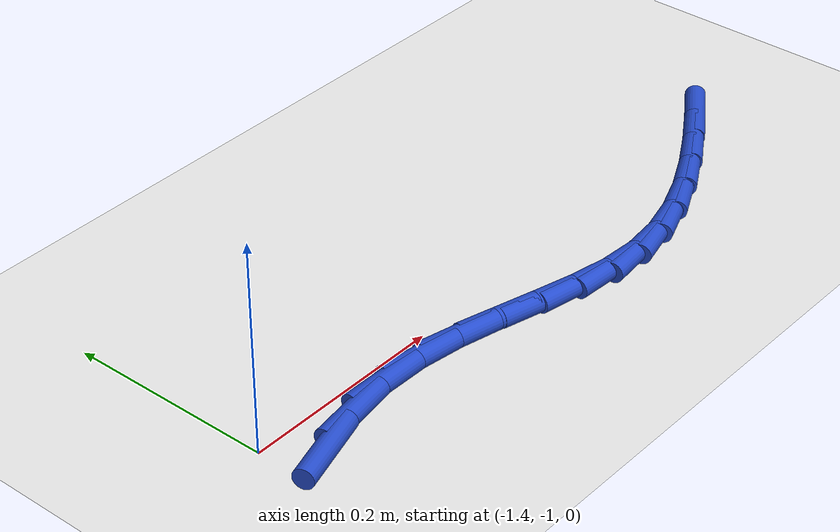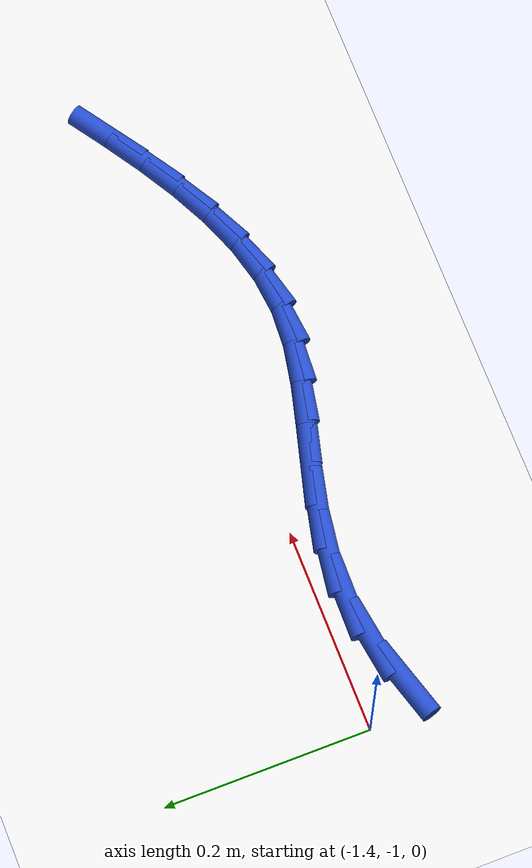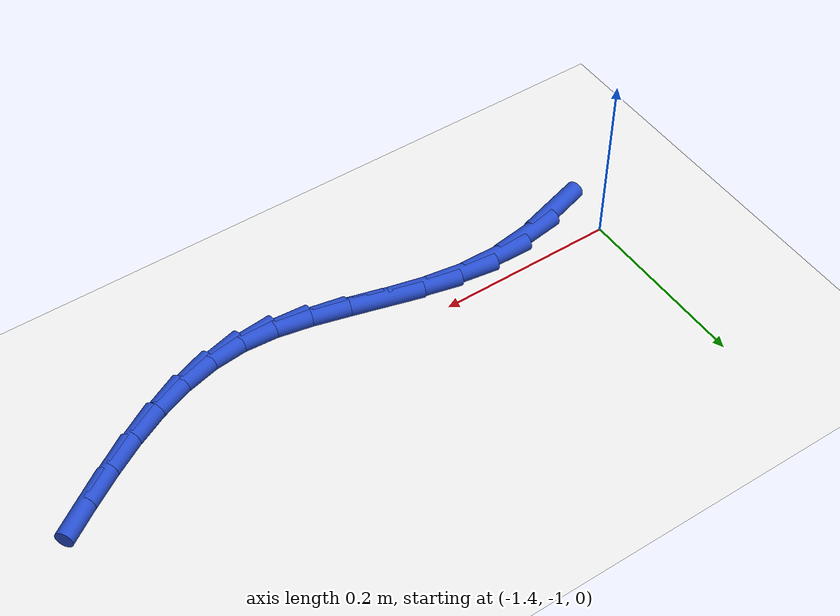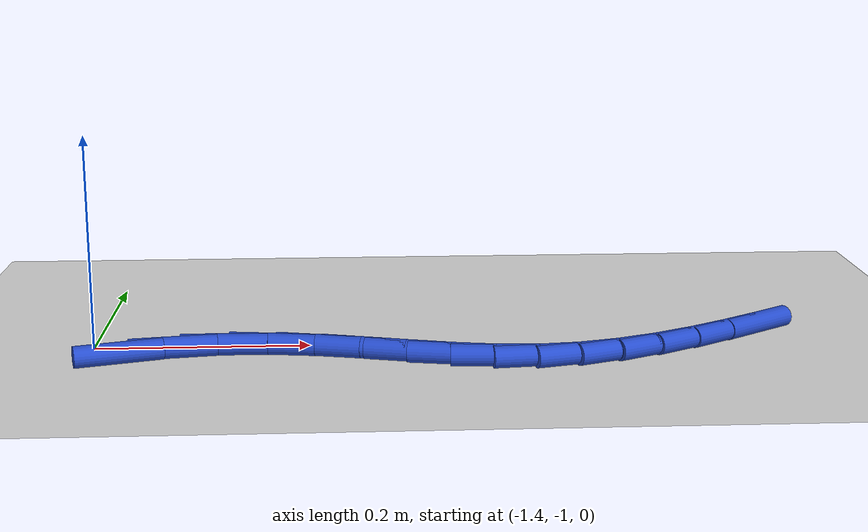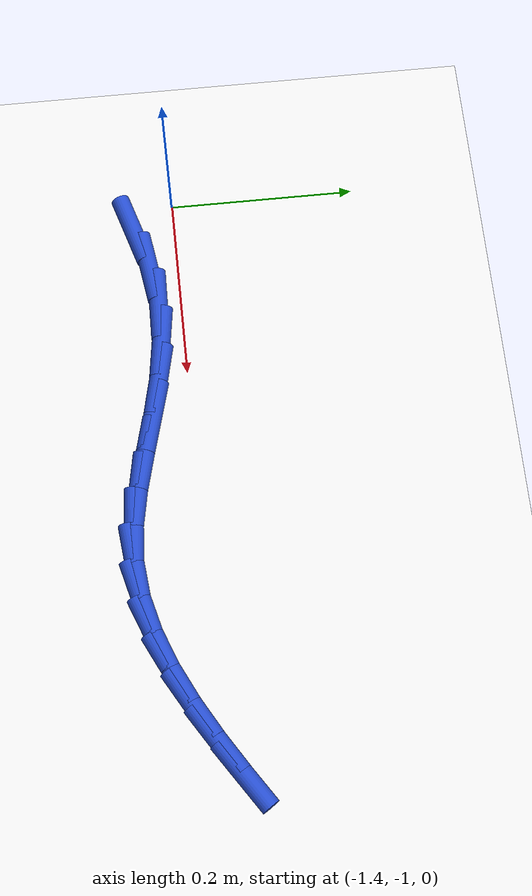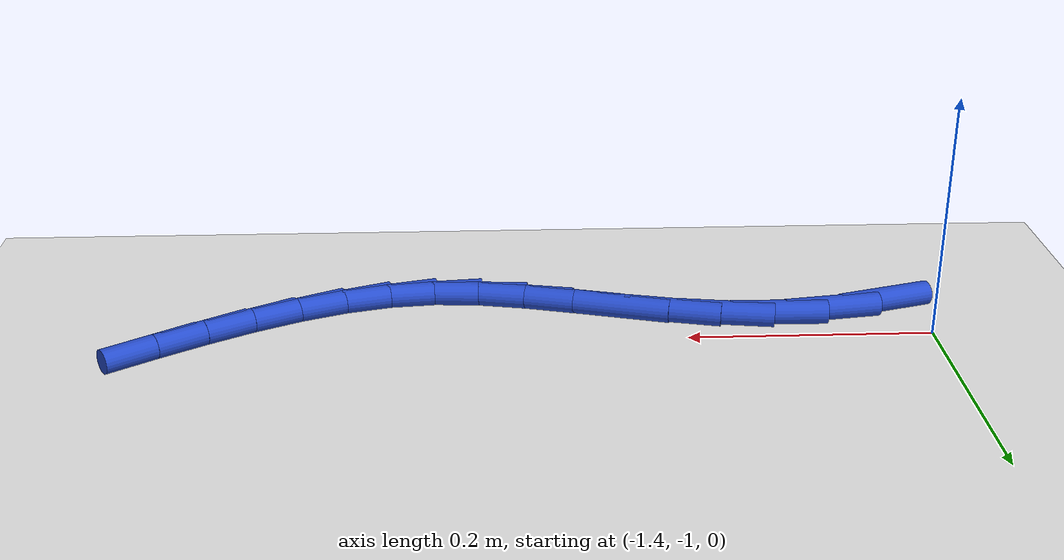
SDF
<sdf version="1.6">
 <world name="default">
  <model name="ground_plane">
   <static>1</static>
   <link name="link">
    <collision name="collision">
     <geometry><plane><normal>0 0 1</normal><size>100 100</size></plane></geometry>
     <surface><friction><ode><mu>100</mu><mu2>50</mu2></ode></friction></surface>
    </collision>
    <visual name="visual">
     <cast_shadows>0</cast_shadows>
     <geometry><plane><normal>0 0 1</normal><size>100 100</size></plane></geometry>
     <material>
      <script><uri>file://media/materials/scripts/gazebo.material</uri><name>Gazebo/WhiteGlow</name></script>
     </material>
    </visual>
   </link>
  </model>
  <model name="line">
   <link name="link_143">
    <pose>-1.3703644212054427 -1.0448659117254724 0.01 0 1.57 0.28922871550356277</pose>
    <collision name="collision">
     <geometry><cylinder><radius>0.01</radius><length>0.08</length></cylinder></geometry>
    </collision>
    <visual name="visual">
     <material>
      <script><name>Gazebo/Blue</name><uri>file://media/materials/scripts/gazebo.material</uri></script>
     </material>
     <geometry><cylinder><radius>0.01</radius><length>0.08</length></cylinder></geometry>
    </visual>
   </link>
   <link name="link_144">
    <pose>-1.323293132770865 -1.0308587666398346 0.01 0 1.57 0.14564522717316772</pose>
    <collision name="collision">
     <geometry><cylinder><radius>0.01</radius><length>0.08</length></cylinder></geometry>
    </collision>
    <visual name="visual">
     <material>
      <script><name>Gazebo/Blue</name><uri>file://media/materials/scripts/gazebo.material</uri></script>
     </material>
     <geometry><cylinder><radius>0.01</radius><length>0.08</length></cylinder></geometry>
    </visual>
   </link>
   <link name="link_145">
    <pose>-1.277574207769142 -1.0241525375277136 0.01 0 1.57 -0.015631701631875865</pose>
    <collision name="collision">
     <geometry><cylinder><radius>0.01</radius><length>0.08</length></cylinder></geometry>
    </collision>
    <visual name="visual">
     <material>
      <script><name>Gazebo/Blue</name><uri>file://media/materials/scripts/gazebo.material</uri></script>
     </material>
     <geometry><cylinder><radius>0.01</radius><length>0.08</length></cylinder></geometry>
    </visual>
   </link>
   <link name="link_146">
    <pose>-1.2335488616845065 -1.024840784660613 0.01 0 1.57 -0.14386185768333418</pose>
    <collision name="collision">
     <geometry><cylinder><radius>0.01</radius><length>0.08</length></cylinder></geometry>
    </collision>
    <visual name="visual">
     <material>
      <script><name>Gazebo/Blue</name><uri>file://media/materials/scripts/gazebo.material</uri></script>
     </material>
     <geometry><cylinder><radius>0.01</radius><length>0.08</length></cylinder></geometry>
    </visual>
   </link>
   <link name="link_147">
    <pose>-1.1910573415722605 -1.0309962171433877 0.01 0 1.57 -0.22798273838812863</pose>
    <collision name="collision">
     <geometry><cylinder><radius>0.01</radius><length>0.08</length></cylinder></geometry>
    </collision>
    <visual name="visual">
     <material>
      <script><name>Gazebo/Blue</name><uri>file://media/materials/scripts/gazebo.material</uri></script>
     </material>
     <geometry><cylinder><radius>0.01</radius><length>0.08</length></cylinder></geometry>
    </visual>
   </link>
   <link name="link_148">
    <pose>-1.149903466029436 -1.0405445957142077 0.01 0 1.57 -0.2651958662432456</pose>
    <collision name="collision">
     <geometry><cylinder><radius>0.01</radius><length>0.08</length></cylinder></geometry>
    </collision>
    <visual name="visual">
     <material>
      <script><name>Gazebo/Blue</name><uri>file://media/materials/scripts/gazebo.material</uri></script>
     </material>
     <geometry><cylinder><radius>0.01</radius><length>0.08</length></cylinder></geometry>
    </visual>
   </link>
   <link name="link_149">
    <pose>-1.1098910536530657 -1.051411681111242 0.01 0 1.57 -0.25326721359316695</pose>
    <collision name="collision">
     <geometry><cylinder><radius>0.01</radius><length>0.08</length></cylinder></geometry>
    </collision>
    <visual name="visual">
     <material>
      <script><name>Gazebo/Blue</name><uri>file://media/materials/scripts/gazebo.material</uri></script>
     </material>
     <geometry><cylinder><radius>0.01</radius><length>0.08</length></cylinder></geometry>
    </visual>
   </link>
   <link name="link_150">
    <pose>-1.0708239230401806 -1.0615232340726592 0.01 0 1.57 -0.18779608914487553</pose>
    <collision name="collision">
     <geometry><cylinder><radius>0.01</radius><length>0.08</length></cylinder></geometry>
    </collision>
    <visual name="visual">
     <material>
      <script><name>Gazebo/Blue</name><uri>file://media/materials/scripts/gazebo.material</uri></script>
     </material>
     <geometry><cylinder><radius>0.01</radius><length>0.08</length></cylinder></geometry>
    </visual>
   </link>
   <link name="link_151">
    <pose>-1.032505892787814 -1.0688050153366306 0.01 0 1.57 -0.0629351795954367</pose>
    <collision name="collision">
     <geometry><cylinder><radius>0.01</radius><length>0.08</length></cylinder></geometry>
    </collision>
    <visual name="visual">
     <material>
      <script><name>Gazebo/Blue</name><uri>file://media/materials/scripts/gazebo.material</uri></script>
     </material>
     <geometry><cylinder><radius>0.01</radius><length>0.08</length></cylinder></geometry>
    </visual>
   </link>
   <link name="link_152">
    <pose>-0.9947408682583905 -1.0711849068885282 0.01 0 1.57 0.10219651301565552</pose>
    <collision name="collision">
     <geometry><cylinder><radius>0.01</radius><length>0.08</length></cylinder></geometry>
    </collision>
    <visual name="visual">
     <material>
      <script><name>Gazebo/Blue</name><uri>file://media/materials/scripts/gazebo.material</uri></script>
     </material>
     <geometry><cylinder><radius>0.01</radius><length>0.08</length></cylinder></geometry>
    </visual>
   </link>
   <link name="link_153">
    <pose>-0.9573638805489332 -1.0673517551352096 0.01 0 1.57 0.2501415875043875</pose>
    <collision name="collision">
     <geometry><cylinder><radius>0.01</radius><length>0.08</length></cylinder></geometry>
    </collision>
    <visual name="visual">
     <material>
      <script><name>Gazebo/Blue</name><uri>file://media/materials/scripts/gazebo.material</uri></script>
     </material>
     <geometry><cylinder><radius>0.01</radius><length>0.08</length></cylinder></geometry>
    </visual>
   </link>
   <link name="link_154">
    <pose>-0.9202870418773631 -1.0578788918243507 0.01 0 1.57 0.36902563526352805</pose>
    <collision name="collision">
     <geometry><cylinder><radius>0.01</radius><length>0.08</length></cylinder></geometry>
    </collision>
    <visual name="visual">
     <material>
      <script><name>Gazebo/Blue</name><uri>file://media/materials/scripts/gazebo.material</uri></script>
     </material>
     <geometry><cylinder><radius>0.01</radius><length>0.08</length></cylinder></geometry>
    </visual>
   </link>
   <link name="link_155">
    <pose>-0.8834341902930539 -1.0436263227584879 0.01 0 1.57 0.4597114066670343</pose>
    <collision name="collision">
     <geometry><cylinder><radius>0.01</radius><length>0.08</length></cylinder></geometry>
    </collision>
    <visual name="visual">
     <material>
      <script><name>Gazebo/Blue</name><uri>file://media/materials/scripts/gazebo.material</uri></script>
     </material>
     <geometry><cylinder><radius>0.01</radius><length>0.08</length></cylinder></geometry>
    </visual>
   </link>
   <link name="link_156">
    <pose>-0.8467291638453787 -1.0254540537401582 0.01 0 1.57 0.5252694282284267</pose>
    <collision name="collision">
     <geometry><cylinder><radius>0.01</radius><length>0.08</length></cylinder></geometry>
    </collision>
    <visual name="visual">
     <material>
      <script><name>Gazebo/Blue</name><uri>file://media/materials/scripts/gazebo.material</uri></script>
     </material>
     <geometry><cylinder><radius>0.01</radius><length>0.08</length></cylinder></geometry>
    </visual>
   </link>
   <link name="link_157">
    <pose>-0.8100958005837109 -1.0042220905718975 0.01 0 1.57 0.5689920820951918</pose>
    <collision name="collision">
     <geometry><cylinder><radius>0.01</radius><length>0.08</length></cylinder></geometry>
    </collision>
    <visual name="visual">
     <material>
      <script><name>Gazebo/Blue</name><uri>file://media/materials/scripts/gazebo.material</uri></script>
     </material>
     <geometry><cylinder><radius>0.01</radius><length>0.08</length></cylinder></geometry>
    </visual>
   </link>
   <link name="link_158">
    <pose>-0.7734579385574242 -0.9807904390562431 0.01 0 1.57 0.5934938845027578</pose>
    <collision name="collision">
     <geometry><cylinder><radius>0.01</radius><length>0.08</length></cylinder></geometry>
    </collision>
    <visual name="visual">
     <material>
      <script><name>Gazebo/Blue</name><uri>file://media/materials/scripts/gazebo.material</uri></script>
     </material>
     <geometry><cylinder><radius>0.01</radius><length>0.08</length></cylinder></geometry>
    </visual>
   </link>
  </model>
 </world>
</sdf>
